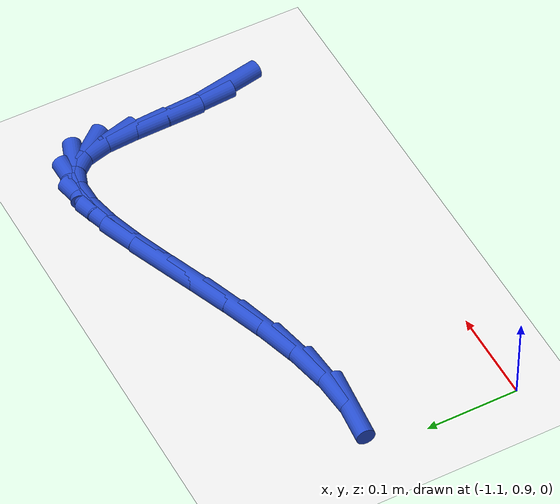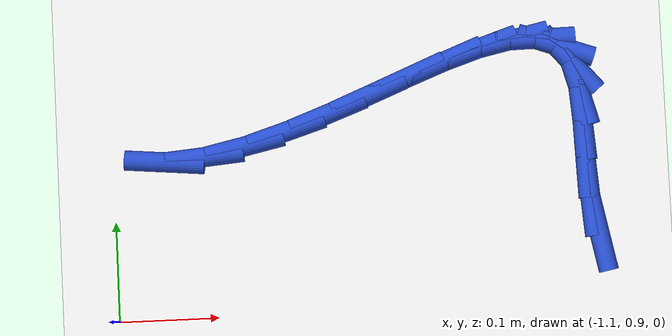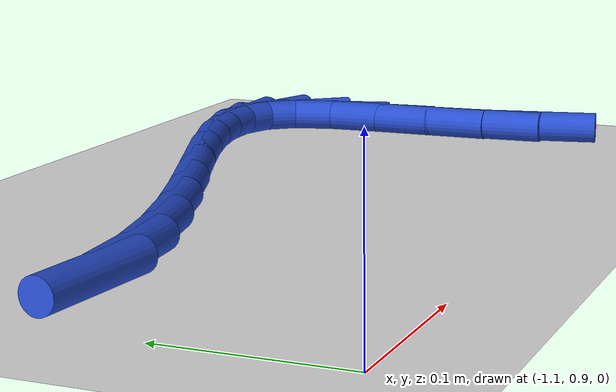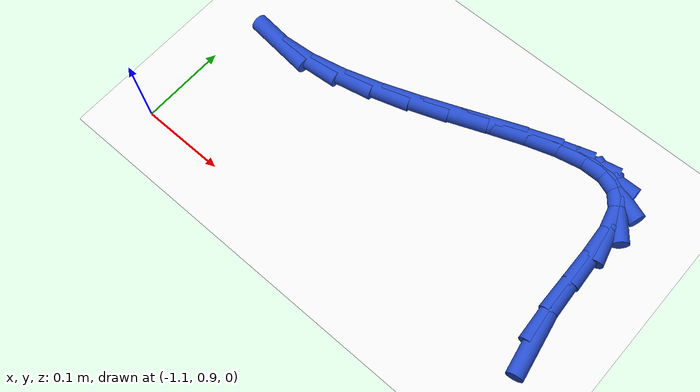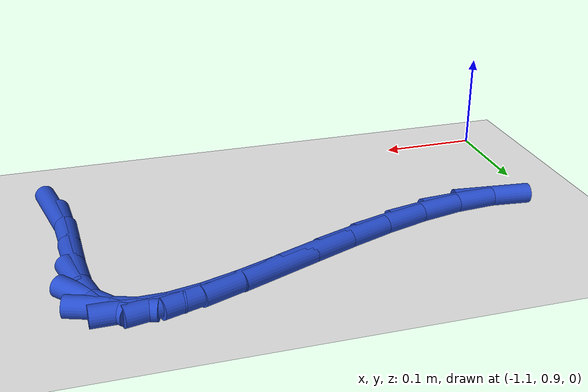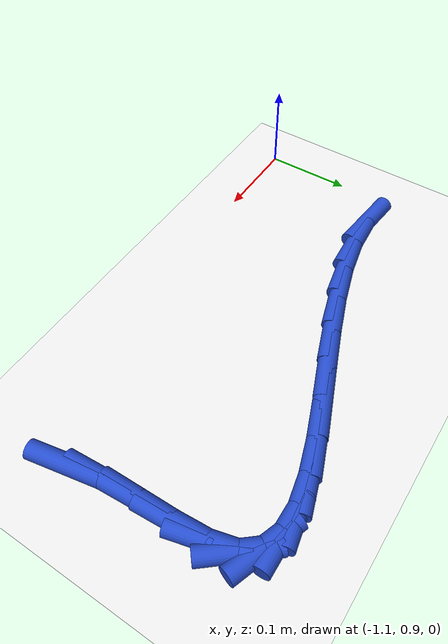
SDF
<sdf version="1.6">
 <world name="default">
  <model name="ground_plane">
   <static>1</static>
   <link name="link">
    <collision name="collision">
     <geometry><plane><normal>0 0 1</normal><size>100 100</size></plane></geometry>
     <surface><friction><ode><mu>100</mu><mu2>50</mu2></ode></friction></surface>
    </collision>
    <visual name="visual">
     <cast_shadows>0</cast_shadows>
     <geometry><plane><normal>0 0 1</normal><size>100 100</size></plane></geometry>
     <material>
      <script><uri>file://media/materials/scripts/gazebo.material</uri><name>Gazebo/WhiteGlow</name></script>
     </material>
    </visual>
   </link>
  </model>
  <model name="line">
   <link name="link_34">
    <pose>-0.6169004537950441 0.967691175810582 0.01 0 1.57 -1.3797373750186677</pose>
    <collision name="collision">
     <geometry><cylinder><radius>0.01</radius><length>0.08</length></cylinder></geometry>
    </collision>
    <visual name="visual">
     <material>
      <script><name>Gazebo/Blue</name><uri>file://media/materials/scripts/gazebo.material</uri></script>
     </material>
     <geometry><cylinder><radius>0.01</radius><length>0.08</length></cylinder></geometry>
    </visual>
   </link>
   <link name="link_35">
    <pose>-0.623857636709132 1.003660818817155 0.01 0 1.57 -1.5017482478699014</pose>
    <collision name="collision">
     <geometry><cylinder><radius>0.01</radius><length>0.08</length></cylinder></geometry>
    </collision>
    <visual name="visual">
     <material>
      <script><name>Gazebo/Blue</name><uri>file://media/materials/scripts/gazebo.material</uri></script>
     </material>
     <geometry><cylinder><radius>0.01</radius><length>0.08</length></cylinder></geometry>
    </visual>
   </link>
   <link name="link_36">
    <pose>-0.6265206996302933 1.042167746803596 0.01 0 1.57 -1.5453269639691765</pose>
    <collision name="collision">
     <geometry><cylinder><radius>0.01</radius><length>0.08</length></cylinder></geometry>
    </collision>
    <visual name="visual">
     <material>
      <script><name>Gazebo/Blue</name><uri>file://media/materials/scripts/gazebo.material</uri></script>
     </material>
     <geometry><cylinder><radius>0.01</radius><length>0.08</length></cylinder></geometry>
    </visual>
   </link>
   <link name="link_37">
    <pose>-0.6274902679781769 1.080227540297017 0.01 0 1.57 -1.5000875965602773</pose>
    <collision name="collision">
     <geometry><cylinder><radius>0.01</radius><length>0.08</length></cylinder></geometry>
    </collision>
    <visual name="visual">
     <material>
      <script><name>Gazebo/Blue</name><uri>file://media/materials/scripts/gazebo.material</uri></script>
     </material>
     <geometry><cylinder><radius>0.01</radius><length>0.08</length></cylinder></geometry>
    </visual>
   </link>
   <link name="link_38">
    <pose>-0.6299020715095869 1.1142796683998075 0.01 0 1.57 -1.3127866502357155</pose>
    <collision name="collision">
     <geometry><cylinder><radius>0.01</radius><length>0.08</length></cylinder></geometry>
    </collision>
    <visual name="visual">
     <material>
      <script><name>Gazebo/Blue</name><uri>file://media/materials/scripts/gazebo.material</uri></script>
     </material>
     <geometry><cylinder><radius>0.01</radius><length>0.08</length></cylinder></geometry>
    </visual>
   </link>
   <link name="link_39">
    <pose>-0.6368911775533318 1.1407644404582313 0.01 0 1.57 -0.872542147429926</pose>
    <collision name="collision">
     <geometry><cylinder><radius>0.01</radius><length>0.08</length></cylinder></geometry>
    </collision>
    <visual name="visual">
     <material>
      <script><name>Gazebo/Blue</name><uri>file://media/materials/scripts/gazebo.material</uri></script>
     </material>
     <geometry><cylinder><radius>0.01</radius><length>0.08</length></cylinder></geometry>
    </visual>
   </link>
   <link name="link_40">
    <pose>-0.6507151930627414 1.1572351633229339 0.01 0 1.57 -0.3457710219645095</pose>
    <collision name="collision">
     <geometry><cylinder><radius>0.01</radius><length>0.08</length></cylinder></geometry>
    </collision>
    <visual name="visual">
     <material>
      <script><name>Gazebo/Blue</name><uri>file://media/materials/scripts/gazebo.material</uri></script>
     </material>
     <geometry><cylinder><radius>0.01</radius><length>0.08</length></cylinder></geometry>
    </visual>
   </link>
   <link name="link_41">
    <pose>-0.6710249732802287 1.1645516272253162 0.01 0 1.57 0.014126392369307286</pose>
    <collision name="collision">
     <geometry><cylinder><radius>0.01</radius><length>0.08</length></cylinder></geometry>
    </collision>
    <visual name="visual">
     <material>
      <script><name>Gazebo/Blue</name><uri>file://media/materials/scripts/gazebo.material</uri></script>
     </material>
     <geometry><cylinder><radius>0.01</radius><length>0.08</length></cylinder></geometry>
    </visual>
   </link>
   <link name="link_42">
    <pose>-0.696989522038674 1.1641848174219658 0.01 0 1.57 0.21052189841606794</pose>
    <collision name="collision">
     <geometry><cylinder><radius>0.01</radius><length>0.08</length></cylinder></geometry>
    </collision>
    <visual name="visual">
     <material>
      <script><name>Gazebo/Blue</name><uri>file://media/materials/scripts/gazebo.material</uri></script>
     </material>
     <geometry><cylinder><radius>0.01</radius><length>0.08</length></cylinder></geometry>
    </visual>
   </link>
   <link name="link_43">
    <pose>-0.7277778431709583 1.1576057191694713 0.01 0 1.57 0.3146620787737415</pose>
    <collision name="collision">
     <geometry><cylinder><radius>0.01</radius><length>0.08</length></cylinder></geometry>
    </collision>
    <visual name="visual">
     <material>
      <script><name>Gazebo/Blue</name><uri>file://media/materials/scripts/gazebo.material</uri></script>
     </material>
     <geometry><cylinder><radius>0.01</radius><length>0.08</length></cylinder></geometry>
    </visual>
   </link>
   <link name="link_44">
    <pose>-0.762558940509962 1.1462853177244214 0.01 0 1.57 0.36711195769859556</pose>
    <collision name="collision">
     <geometry><cylinder><radius>0.01</radius><length>0.08</length></cylinder></geometry>
    </collision>
    <visual name="visual">
     <material>
      <script><name>Gazebo/Blue</name><uri>file://media/materials/scripts/gazebo.material</uri></script>
     </material>
     <geometry><cylinder><radius>0.01</radius><length>0.08</length></cylinder></geometry>
    </visual>
   </link>
   <link name="link_45">
    <pose>-0.8005018178885651 1.131694598343404 0.01 0 1.57 0.3864979659915495</pose>
    <collision name="collision">
     <geometry><cylinder><radius>0.01</radius><length>0.08</length></cylinder></geometry>
    </collision>
    <visual name="visual">
     <material>
      <script><name>Gazebo/Blue</name><uri>file://media/materials/scripts/gazebo.material</uri></script>
     </material>
     <geometry><cylinder><radius>0.01</radius><length>0.08</length></cylinder></geometry>
    </visual>
   </link>
   <link name="link_46">
    <pose>-0.8407754791396487 1.1153045462830076 0.01 0 1.57 0.38069250484605854</pose>
    <collision name="collision">
     <geometry><cylinder><radius>0.01</radius><length>0.08</length></cylinder></geometry>
    </collision>
    <visual name="visual">
     <material>
      <script><name>Gazebo/Blue</name><uri>file://media/materials/scripts/gazebo.material</uri></script>
     </material>
     <geometry><cylinder><radius>0.01</radius><length>0.08</length></cylinder></geometry>
    </visual>
   </link>
   <link name="link_47">
    <pose>-0.882548928096093 1.0985861467998201 0.01 0 1.57 0.3517273662462048</pose>
    <collision name="collision">
     <geometry><cylinder><radius>0.01</radius><length>0.08</length></cylinder></geometry>
    </collision>
    <visual name="visual">
     <material>
      <script><name>Gazebo/Blue</name><uri>file://media/materials/scripts/gazebo.material</uri></script>
     </material>
     <geometry><cylinder><radius>0.01</radius><length>0.08</length></cylinder></geometry>
    </visual>
   </link>
   <link name="link_48">
    <pose>-0.9249911685907786 1.08301038515043 0.01 0 1.57 0.29748088809117124</pose>
    <collision name="collision">
     <geometry><cylinder><radius>0.01</radius><length>0.08</length></cylinder></geometry>
    </collision>
    <visual name="visual">
     <material>
      <script><name>Gazebo/Blue</name><uri>file://media/materials/scripts/gazebo.material</uri></script>
     </material>
     <geometry><cylinder><radius>0.01</radius><length>0.08</length></cylinder></geometry>
    </visual>
   </link>
   <link name="link_49">
    <pose>-0.9672712044565863 1.0700482465914258 0.01 0 1.57 0.21179608505710049</pose>
    <collision name="collision">
     <geometry><cylinder><radius>0.01</radius><length>0.08</length></cylinder></geometry>
    </collision>
    <visual name="visual">
     <material>
      <script><name>Gazebo/Blue</name><uri>file://media/materials/scripts/gazebo.material</uri></script>
     </material>
     <geometry><cylinder><radius>0.01</radius><length>0.08</length></cylinder></geometry>
    </visual>
   </link>
   <link name="link_50">
    <pose>-1.0085580395263958 1.0611707163793958 0.01 0 1.57 0.08398128909818635</pose>
    <collision name="collision">
     <geometry><cylinder><radius>0.01</radius><length>0.08</length></cylinder></geometry>
    </collision>
    <visual name="visual">
     <material>
      <script><name>Gazebo/Blue</name><uri>file://media/materials/scripts/gazebo.material</uri></script>
     </material>
     <geometry><cylinder><radius>0.01</radius><length>0.08</length></cylinder></geometry>
    </visual>
   </link>
   <link name="link_51">
    <pose>-1.0480206776330891 1.0578487797709282 0.01 0 1.57 -0.09417309541365061</pose>
    <collision name="collision">
     <geometry><cylinder><radius>0.01</radius><length>0.08</length></cylinder></geometry>
    </collision>
    <visual name="visual">
     <material>
      <script><name>Gazebo/Blue</name><uri>file://media/materials/scripts/gazebo.material</uri></script>
     </material>
     <geometry><cylinder><radius>0.01</radius><length>0.08</length></cylinder></geometry>
    </visual>
   </link>
  </model>
 </world>
</sdf>
